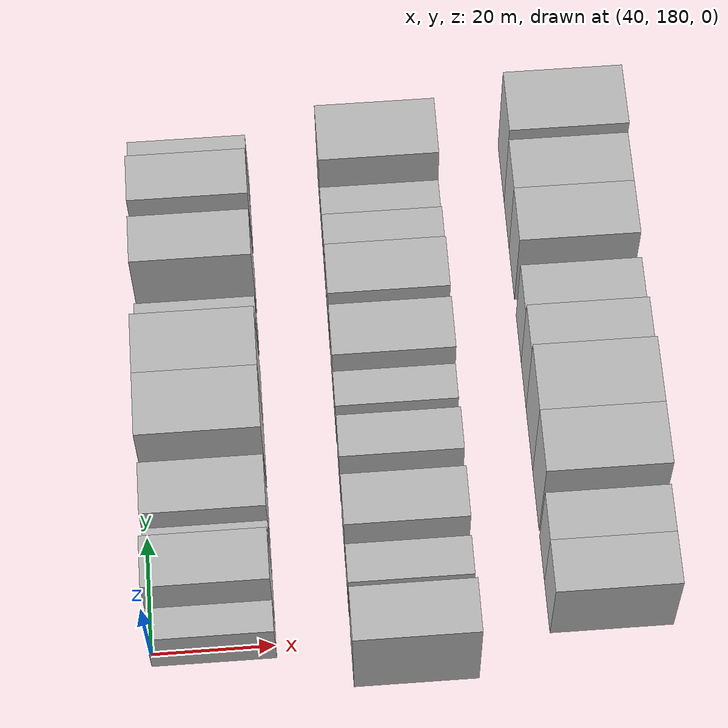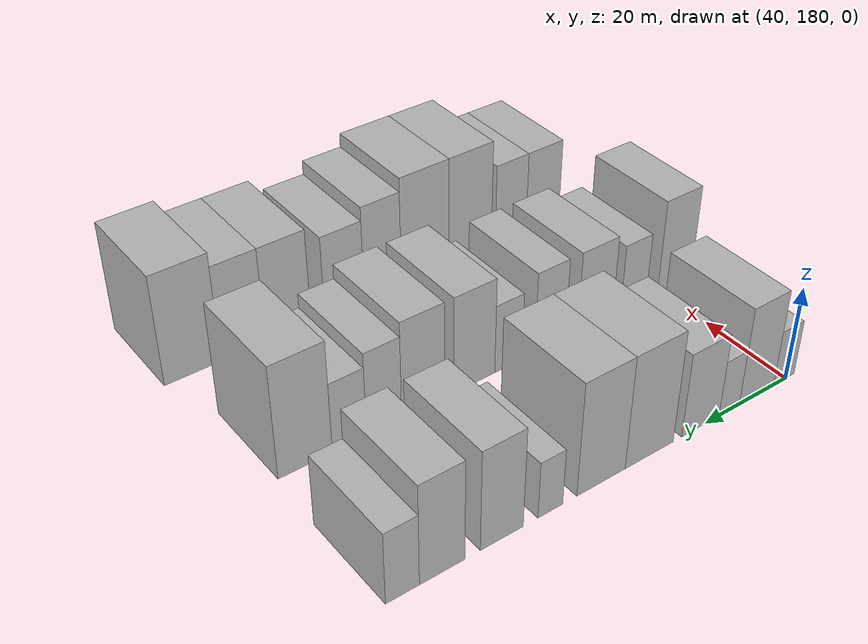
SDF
<sdf version="1.6">
 <world name="default">
  <model name="building_56">
   <static>1</static>
   <pose>50.0000 180.5669 0 0.000000 0.000000 0.000000</pose>
   <link name="link">
    <pose>0 0 6.00 0 0 0</pose>
    <collision name="collision"><geometry><box><size>20.0000 5.3025 12.0000</size></box></geometry></collision>
    <visual name="visual">
     <cast_shadows>0</cast_shadows>
     <geometry><box><size>20.0000 5.3025 12.0000</size></box></geometry>
     <material>
      <script>
       <uri>model://HANNAS_wall/materials/scripts</uri>
       <uri>model://HANNAS_wall/materials/textures</uri>
       <name>vrc/HANNAS_wall</name>
      </script>
     </material>
    </visual>
   </link>
  </model>
  <model name="building_57">
   <static>1</static>
   <pose>50.0000 187.5243 0 0.000000 0.000000 0.000000</pose>
   <link name="link">
    <pose>0 0 10.50 0 0 0</pose>
    <collision name="collision"><geometry><box><size>20.0000 8.6123 21.0000</size></box></geometry></collision>
    <visual name="visual">
     <cast_shadows>0</cast_shadows>
     <geometry><box><size>20.0000 8.6123 21.0000</size></box></geometry>
     <material>
      <script>
       <uri>model://HANNAS_wall/materials/scripts</uri>
       <uri>model://HANNAS_wall/materials/textures</uri>
       <name>vrc/HANNAS_wall</name>
      </script>
     </material>
    </visual>
   </link>
  </model>
  <model name="building_58">
   <static>1</static>
   <pose>50.0000 194.3068 0 0.000000 0.000000 0.000000</pose>
   <link name="link">
    <pose>0 0 6.00 0 0 0</pose>
    <collision name="collision"><geometry><box><size>20.0000 4.9527 12.0000</size></box></geometry></collision>
    <visual name="visual">
     <cast_shadows>0</cast_shadows>
     <geometry><box><size>20.0000 4.9527 12.0000</size></box></geometry>
     <material>
      <script>
       <uri>model://HANNAS_wall/materials/scripts</uri>
       <uri>model://HANNAS_wall/materials/textures</uri>
       <name>vrc/HANNAS_wall</name>
      </script>
     </material>
    </visual>
   </link>
  </model>
  <model name="building_59">
   <static>1</static>
   <pose>50.0000 201.2192 0 0.000000 0.000000 0.000000</pose>
   <link name="link">
    <pose>0 0 9.00 0 0 0</pose>
    <collision name="collision"><geometry><box><size>20.0000 8.8721 18.0000</size></box></geometry></collision>
    <visual name="visual">
     <cast_shadows>0</cast_shadows>
     <geometry><box><size>20.0000 8.8721 18.0000</size></box></geometry>
     <material>
      <script>
       <uri>model://HANNAS_wall/materials/scripts</uri>
       <uri>model://HANNAS_wall/materials/textures</uri>
       <name>vrc/HANNAS_wall</name>
      </script>
     </material>
    </visual>
   </link>
  </model>
  <model name="building_60">
   <static>1</static>
   <pose>50.0000 213.1062 0 0.000000 0.000000 0.000000</pose>
   <link name="link">
    <pose>0 0 12.00 0 0 0</pose>
    <collision name="collision"><geometry><box><size>20.0000 10.9019 24.0000</size></box></geometry></collision>
    <visual name="visual">
     <cast_shadows>0</cast_shadows>
     <geometry><box><size>20.0000 10.9019 24.0000</size></box></geometry>
     <material>
      <script>
       <uri>model://HANNAS_wall/materials/scripts</uri>
       <uri>model://HANNAS_wall/materials/textures</uri>
       <name>vrc/HANNAS_wall</name>
      </script>
     </material>
    </visual>
   </link>
  </model>
  <model name="building_61">
   <static>1</static>
   <pose>50.0000 223.7945 0 0.000000 0.000000 0.000000</pose>
   <link name="link">
    <pose>0 0 12.00 0 0 0</pose>
    <collision name="collision"><geometry><box><size>20.0000 10.4748 24.0000</size></box></geometry></collision>
    <visual name="visual">
     <cast_shadows>0</cast_shadows>
     <geometry><box><size>20.0000 10.4748 24.0000</size></box></geometry>
     <material>
      <script>
       <uri>model://HANNAS_wall/materials/scripts</uri>
       <uri>model://HANNAS_wall/materials/textures</uri>
       <name>vrc/HANNAS_wall</name>
      </script>
     </material>
    </visual>
   </link>
  </model>
  <model name="building_62">
   <static>1</static>
   <pose>50.0000 234.5943 0 0.000000 0.000000 0.000000</pose>
   <link name="link">
    <pose>0 0 6.00 0 0 0</pose>
    <collision name="collision"><geometry><box><size>20.0000 5.1248 12.0000</size></box></geometry></collision>
    <visual name="visual">
     <cast_shadows>0</cast_shadows>
     <geometry><box><size>20.0000 5.1248 12.0000</size></box></geometry>
     <material>
      <script>
       <uri>model://HANNAS_wall/materials/scripts</uri>
       <uri>model://HANNAS_wall/materials/textures</uri>
       <name>vrc/HANNAS_wall</name>
      </script>
     </material>
    </visual>
   </link>
  </model>
  <model name="building_63">
   <static>1</static>
   <pose>50.0000 244.4211 0 0.000000 0.000000 0.000000</pose>
   <link name="link">
    <pose>0 0 10.50 0 0 0</pose>
    <collision name="collision"><geometry><box><size>20.0000 8.5288 21.0000</size></box></geometry></collision>
    <visual name="visual">
     <cast_shadows>0</cast_shadows>
     <geometry><box><size>20.0000 8.5288 21.0000</size></box></geometry>
     <material>
      <script>
       <uri>model://HANNAS_wall/materials/scripts</uri>
       <uri>model://HANNAS_wall/materials/textures</uri>
       <name>vrc/HANNAS_wall</name>
      </script>
     </material>
    </visual>
   </link>
  </model>
  <model name="building_64">
   <static>1</static>
   <pose>50.0000 255.9613 0 0.000000 0.000000 0.000000</pose>
   <link name="link">
    <pose>0 0 10.50 0 0 0</pose>
    <collision name="collision"><geometry><box><size>20.0000 8.5516 21.0000</size></box></geometry></collision>
    <visual name="visual">
     <cast_shadows>0</cast_shadows>
     <geometry><box><size>20.0000 8.5516 21.0000</size></box></geometry>
     <material>
      <script>
       <uri>model://HANNAS_wall/materials/scripts</uri>
       <uri>model://HANNAS_wall/materials/textures</uri>
       <name>vrc/HANNAS_wall</name>
      </script>
     </material>
    </visual>
   </link>
  </model>
  <model name="building_65">
   <static>1</static>
   <pose>50.0000 263.3479 0 0.000000 0.000000 0.000000</pose>
   <link name="link">
    <pose>0 0 7.50 0 0 0</pose>
    <collision name="collision"><geometry><box><size>20.0000 6.2216 15.0000</size></box></geometry></collision>
    <visual name="visual">
     <cast_shadows>0</cast_shadows>
     <geometry><box><size>20.0000 6.2216 15.0000</size></box></geometry>
     <material>
      <script>
       <uri>model://HANNAS_wall/materials/scripts</uri>
       <uri>model://HANNAS_wall/materials/textures</uri>
       <name>vrc/HANNAS_wall</name>
      </script>
     </material>
    </visual>
   </link>
  </model>
  <model name="building_135">
   <static>1</static>
   <pose>82.0000 176.5846 0 0.000000 0.000000 0.000000</pose>
   <link name="link">
    <pose>0 0 10.50 0 0 0</pose>
    <collision name="collision"><geometry><box><size>20.0000 8.9161 21.0000</size></box></geometry></collision>
    <visual name="visual">
     <cast_shadows>0</cast_shadows>
     <geometry><box><size>20.0000 8.9161 21.0000</size></box></geometry>
     <material>
      <script>
       <uri>model://HANNAS_wall/materials/scripts</uri>
       <uri>model://HANNAS_wall/materials/textures</uri>
       <name>vrc/HANNAS_wall</name>
      </script>
     </material>
    </visual>
   </link>
  </model>
  <model name="building_136">
   <static>1</static>
   <pose>82.0000 187.3117 0 0.000000 0.000000 0.000000</pose>
   <link name="link">
    <pose>0 0 7.50 0 0 0</pose>
    <collision name="collision"><geometry><box><size>20.0000 6.5380 15.0000</size></box></geometry></collision>
    <visual name="visual">
     <cast_shadows>0</cast_shadows>
     <geometry><box><size>20.0000 6.5380 15.0000</size></box></geometry>
     <material>
      <script>
       <uri>model://HANNAS_wall/materials/scripts</uri>
       <uri>model://HANNAS_wall/materials/textures</uri>
       <name>vrc/HANNAS_wall</name>
      </script>
     </material>
    </visual>
   </link>
  </model>
  <model name="building_137">
   <static>1</static>
   <pose>82.0000 196.9333 0 0.000000 0.000000 0.000000</pose>
   <link name="link">
    <pose>0 0 9.00 0 0 0</pose>
    <collision name="collision"><geometry><box><size>20.0000 8.7052 18.0000</size></box></geometry></collision>
    <visual name="visual">
     <cast_shadows>0</cast_shadows>
     <geometry><box><size>20.0000 8.7052 18.0000</size></box></geometry>
     <material>
      <script>
       <uri>model://HANNAS_wall/materials/scripts</uri>
       <uri>model://HANNAS_wall/materials/textures</uri>
       <name>vrc/HANNAS_wall</name>
      </script>
     </material>
    </visual>
   </link>
  </model>
  <model name="building_138">
   <static>1</static>
   <pose>82.0000 207.9379 0 0.000000 0.000000 0.000000</pose>
   <link name="link">
    <pose>0 0 9.00 0 0 0</pose>
    <collision name="collision"><geometry><box><size>20.0000 7.3039 18.0000</size></box></geometry></collision>
    <visual name="visual">
     <cast_shadows>0</cast_shadows>
     <geometry><box><size>20.0000 7.3039 18.0000</size></box></geometry>
     <material>
      <script>
       <uri>model://HANNAS_wall/materials/scripts</uri>
       <uri>model://HANNAS_wall/materials/textures</uri>
       <name>vrc/HANNAS_wall</name>
      </script>
     </material>
    </visual>
   </link>
  </model>
  <model name="building_139">
   <static>1</static>
   <pose>82.0000 217.7088 0 0.000000 0.000000 0.000000</pose>
   <link name="link">
    <pose>0 0 7.50 0 0 0</pose>
    <collision name="collision"><geometry><box><size>20.0000 6.2378 15.0000</size></box></geometry></collision>
    <visual name="visual">
     <cast_shadows>0</cast_shadows>
     <geometry><box><size>20.0000 6.2378 15.0000</size></box></geometry>
     <material>
      <script>
       <uri>model://HANNAS_wall/materials/scripts</uri>
       <uri>model://HANNAS_wall/materials/textures</uri>
       <name>vrc/HANNAS_wall</name>
      </script>
     </material>
    </visual>
   </link>
  </model>
  <model name="building_140">
   <static>1</static>
   <pose>82.0000 225.4096 0 0.000000 0.000000 0.000000</pose>
   <link name="link">
    <pose>0 0 10.50 0 0 0</pose>
    <collision name="collision"><geometry><box><size>20.0000 9.1638 21.0000</size></box></geometry></collision>
    <visual name="visual">
     <cast_shadows>0</cast_shadows>
     <geometry><box><size>20.0000 9.1638 21.0000</size></box></geometry>
     <material>
      <script>
       <uri>model://HANNAS_wall/materials/scripts</uri>
       <uri>model://HANNAS_wall/materials/textures</uri>
       <name>vrc/HANNAS_wall</name>
      </script>
     </material>
    </visual>
   </link>
  </model>
  <model name="building_141">
   <static>1</static>
   <pose>82.0000 236.5571 0 0.000000 0.000000 0.000000</pose>
   <link name="link">
    <pose>0 0 10.50 0 0 0</pose>
    <collision name="collision"><geometry><box><size>20.0000 9.1312 21.0000</size></box></geometry></collision>
    <visual name="visual">
     <cast_shadows>0</cast_shadows>
     <geometry><box><size>20.0000 9.1312 21.0000</size></box></geometry>
     <material>
      <script>
       <uri>model://HANNAS_wall/materials/scripts</uri>
       <uri>model://HANNAS_wall/materials/textures</uri>
       <name>vrc/HANNAS_wall</name>
      </script>
     </material>
    </visual>
   </link>
  </model>
  <model name="building_142">
   <static>1</static>
   <pose>82.0000 244.7655 0 0.000000 0.000000 0.000000</pose>
   <link name="link">
    <pose>0 0 9.00 0 0 0</pose>
    <collision name="collision"><geometry><box><size>20.0000 7.2855 18.0000</size></box></geometry></collision>
    <visual name="visual">
     <cast_shadows>0</cast_shadows>
     <geometry><box><size>20.0000 7.2855 18.0000</size></box></geometry>
     <material>
      <script>
       <uri>model://HANNAS_wall/materials/scripts</uri>
       <uri>model://HANNAS_wall/materials/textures</uri>
       <name>vrc/HANNAS_wall</name>
      </script>
     </material>
    </visual>
   </link>
  </model>
  <model name="building_143">
   <static>1</static>
   <pose>82.0000 251.8441 0 0.000000 0.000000 0.000000</pose>
   <link name="link">
    <pose>0 0 7.50 0 0 0</pose>
    <collision name="collision"><geometry><box><size>20.0000 6.8716 15.0000</size></box></geometry></collision>
    <visual name="visual">
     <cast_shadows>0</cast_shadows>
     <geometry><box><size>20.0000 6.8716 15.0000</size></box></geometry>
     <material>
      <script>
       <uri>model://HANNAS_wall/materials/scripts</uri>
       <uri>model://HANNAS_wall/materials/textures</uri>
       <name>vrc/HANNAS_wall</name>
      </script>
     </material>
    </visual>
   </link>
  </model>
  <model name="building_144">
   <static>1</static>
   <pose>82.0000 260.5525 0 0.000000 0.000000 0.000000</pose>
   <link name="link">
    <pose>0 0 12.00 0 0 0</pose>
    <collision name="collision"><geometry><box><size>20.0000 10.5453 24.0000</size></box></geometry></collision>
    <visual name="visual">
     <cast_shadows>0</cast_shadows>
     <geometry><box><size>20.0000 10.5453 24.0000</size></box></geometry>
     <material>
      <script>
       <uri>model://HANNAS_wall/materials/scripts</uri>
       <uri>model://HANNAS_wall/materials/textures</uri>
       <name>vrc/HANNAS_wall</name>
      </script>
     </material>
    </visual>
   </link>
  </model>
  <model name="building_213">
   <static>1</static>
   <pose>114.0000 183.2669 0 0.000000 0.000000 0.000000</pose>
   <link name="link">
    <pose>0 0 9.00 0 0 0</pose>
    <collision name="collision"><geometry><box><size>20.0000 8.7602 18.0000</size></box></geometry></collision>
    <visual name="visual">
     <cast_shadows>0</cast_shadows>
     <geometry><box><size>20.0000 8.7602 18.0000</size></box></geometry>
     <material>
      <script>
       <uri>model://HANNAS_wall/materials/scripts</uri>
       <uri>model://HANNAS_wall/materials/textures</uri>
       <name>vrc/HANNAS_wall</name>
      </script>
     </material>
    </visual>
   </link>
  </model>
  <model name="building_214">
   <static>1</static>
   <pose>114.0000 191.6680 0 0.000000 0.000000 0.000000</pose>
   <link name="link">
    <pose>0 0 9.00 0 0 0</pose>
    <collision name="collision"><geometry><box><size>20.0000 8.0421 18.0000</size></box></geometry></collision>
    <visual name="visual">
     <cast_shadows>0</cast_shadows>
     <geometry><box><size>20.0000 8.0421 18.0000</size></box></geometry>
     <material>
      <script>
       <uri>model://HANNAS_wall/materials/scripts</uri>
       <uri>model://HANNAS_wall/materials/textures</uri>
       <name>vrc/HANNAS_wall</name>
      </script>
     </material>
    </visual>
   </link>
  </model>
  <model name="building_215">
   <static>1</static>
   <pose>114.0000 202.0102 0 0.000000 0.000000 0.000000</pose>
   <link name="link">
    <pose>0 0 12.00 0 0 0</pose>
    <collision name="collision"><geometry><box><size>20.0000 10.6422 24.0000</size></box></geometry></collision>
    <visual name="visual">
     <cast_shadows>0</cast_shadows>
     <geometry><box><size>20.0000 10.6422 24.0000</size></box></geometry>
     <material>
      <script>
       <uri>model://HANNAS_wall/materials/scripts</uri>
       <uri>model://HANNAS_wall/materials/textures</uri>
       <name>vrc/HANNAS_wall</name>
      </script>
     </material>
    </visual>
   </link>
  </model>
  <model name="building_216">
   <static>1</static>
   <pose>114.0000 213.0806 0 0.000000 0.000000 0.000000</pose>
   <link name="link">
    <pose>0 0 12.00 0 0 0</pose>
    <collision name="collision"><geometry><box><size>20.0000 11.4986 24.0000</size></box></geometry></collision>
    <visual name="visual">
     <cast_shadows>0</cast_shadows>
     <geometry><box><size>20.0000 11.4986 24.0000</size></box></geometry>
     <material>
      <script>
       <uri>model://HANNAS_wall/materials/scripts</uri>
       <uri>model://HANNAS_wall/materials/textures</uri>
       <name>vrc/HANNAS_wall</name>
      </script>
     </material>
    </visual>
   </link>
  </model>
  <model name="building_217">
   <static>1</static>
   <pose>114.0000 223.1724 0 0.000000 0.000000 0.000000</pose>
   <link name="link">
    <pose>0 0 10.50 0 0 0</pose>
    <collision name="collision"><geometry><box><size>20.0000 8.6851 21.0000</size></box></geometry></collision>
    <visual name="visual">
     <cast_shadows>0</cast_shadows>
     <geometry><box><size>20.0000 8.6851 21.0000</size></box></geometry>
     <material>
      <script>
       <uri>model://HANNAS_wall/materials/scripts</uri>
       <uri>model://HANNAS_wall/materials/textures</uri>
       <name>vrc/HANNAS_wall</name>
      </script>
     </material>
    </visual>
   </link>
  </model>
  <model name="building_218">
   <static>1</static>
   <pose>114.0000 231.9861 0 0.000000 0.000000 0.000000</pose>
   <link name="link">
    <pose>0 0 9.00 0 0 0</pose>
    <collision name="collision"><geometry><box><size>20.0000 8.9421 18.0000</size></box></geometry></collision>
    <visual name="visual">
     <cast_shadows>0</cast_shadows>
     <geometry><box><size>20.0000 8.9421 18.0000</size></box></geometry>
     <material>
      <script>
       <uri>model://HANNAS_wall/materials/scripts</uri>
       <uri>model://HANNAS_wall/materials/textures</uri>
       <name>vrc/HANNAS_wall</name>
      </script>
     </material>
    </visual>
   </link>
  </model>
  <model name="building_219">
   <static>1</static>
   <pose>114.0000 244.4055 0 0.000000 0.000000 0.000000</pose>
   <link name="link">
    <pose>0 0 10.50 0 0 0</pose>
    <collision name="collision"><geometry><box><size>20.0000 9.8967 21.0000</size></box></geometry></collision>
    <visual name="visual">
     <cast_shadows>0</cast_shadows>
     <geometry><box><size>20.0000 9.8967 21.0000</size></box></geometry>
     <material>
      <script>
       <uri>model://HANNAS_wall/materials/scripts</uri>
       <uri>model://HANNAS_wall/materials/textures</uri>
       <name>vrc/HANNAS_wall</name>
      </script>
     </material>
    </visual>
   </link>
  </model>
  <model name="building_220">
   <static>1</static>
   <pose>114.0000 253.9848 0 0.000000 0.000000 0.000000</pose>
   <link name="link">
    <pose>0 0 10.50 0 0 0</pose>
    <collision name="collision"><geometry><box><size>20.0000 9.2620 21.0000</size></box></geometry></collision>
    <visual name="visual">
     <cast_shadows>0</cast_shadows>
     <geometry><box><size>20.0000 9.2620 21.0000</size></box></geometry>
     <material>
      <script>
       <uri>model://HANNAS_wall/materials/scripts</uri>
       <uri>model://HANNAS_wall/materials/textures</uri>
       <name>vrc/HANNAS_wall</name>
      </script>
     </material>
    </visual>
   </link>
  </model>
  <model name="building_221">
   <static>1</static>
   <pose>114.0000 264.3128 0 0.000000 0.000000 0.000000</pose>
   <link name="link">
    <pose>0 0 12.00 0 0 0</pose>
    <collision name="collision"><geometry><box><size>20.0000 11.3940 24.0000</size></box></geometry></collision>
    <visual name="visual">
     <cast_shadows>0</cast_shadows>
     <geometry><box><size>20.0000 11.3940 24.0000</size></box></geometry>
     <material>
      <script>
       <uri>model://HANNAS_wall/materials/scripts</uri>
       <uri>model://HANNAS_wall/materials/textures</uri>
       <name>vrc/HANNAS_wall</name>
      </script>
     </material>
    </visual>
   </link>
  </model>
 </world>
</sdf>
